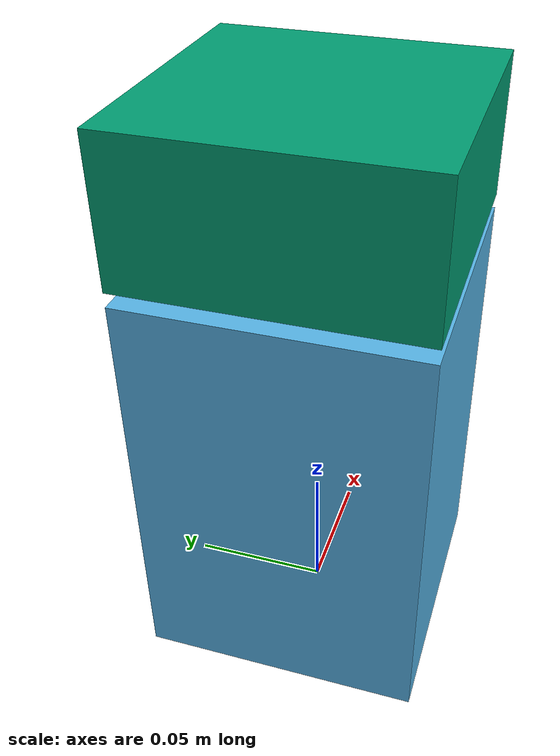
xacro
<?xml version="1.0"?>
<robot xmlns:xacro="http://www.ros.org/wiki/xacro" name="turret_robot">
<xacro:arg name="prefix" default="" />

  <!-- Import Turret Bot macro -->
  <xacro:include filename="$(find turretbot_description)/urdf/turretbot_description.urdf.xacro" />

  <!-- Import Turret Bot ros2_control description -->
  <xacro:include filename="$(find turretbot_description)/ros2_control/turretbot_actuators.ros2_control.xacro" />

  <!-- Used for fixing robot -->
  <link name="world"/>

  <xacro:turretbot parent="world" prefix="$(arg prefix)">
    <origin xyz="0 0 0" rpy="0 0 0" />
  </xacro:turretbot>

  <xacro:turretbot_actuator name="Turret_Bot" prefix="$(arg prefix)" />

</robot>

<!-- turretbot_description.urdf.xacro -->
<robot xmlns:xacro="http://www.ros.org/wiki/xacro">

  <xacro:macro name="turretbot" params="parent prefix *origin">

  <xacro:property name="base_x" value="0.10" />
  <xacro:property name="base_y" value="0.10" />
  <xacro:property name="base_z" value="0.15" />

  <xacro:property name="platform_x" value="0.10" />
  <xacro:property name="platform_y" value="0.10" />
  <xacro:property name="platform_z" value="0.05" />\

    <joint name="${prefix}base_joint" type="fixed">
      <xacro:insert_block name="origin" />
      <parent link="${parent}"/>
      <child link="${prefix}base_link" />
    </joint>

    <!-- Base Link -->
    <link name="${prefix}base_link">
      <visual>
        <origin xyz="0 0 ${base_z / 2}" rpy="0 0 0" />
        <geometry>
          <box size="${base_x} ${base_y} ${base_z}"/>
        </geometry>
      </visual>

      <collision>
        <origin xyz="0 0 ${base_z / 2}" rpy="0 0 0" />
        <geometry>
          <box size="${base_x} ${base_y} ${base_z}"/>
        </geometry>
      </collision>
    </link>

    <joint name="${prefix}base_to_platform_joint" type="continuous">
      <parent link="${prefix}base_link" />
      <child link="${prefix}platform_link" />
      <origin xyz="0 0 ${base_z + 0.005}" rpy="0 0 0" />
      <axis xyz="0 0 1" />
    </joint>

    <!-- Platform Link -->
    <link name="${prefix}platform_link">
      <visual>
        <origin xyz="0 0 ${platform_z / 2}" rpy="0 0 0" />
        <geometry>
          <box size="${platform_x} ${platform_y} ${platform_z}"/>
        </geometry>
      </visual>

      <collision>
        <origin xyz="0 0 ${platform_z / 2}" rpy="0 0 0" />
        <geometry>
          <box size="${platform_x} ${platform_y} ${platform_z}"/>
        </geometry>
      </collision>
    </link>

  </xacro:macro>
</robot>
